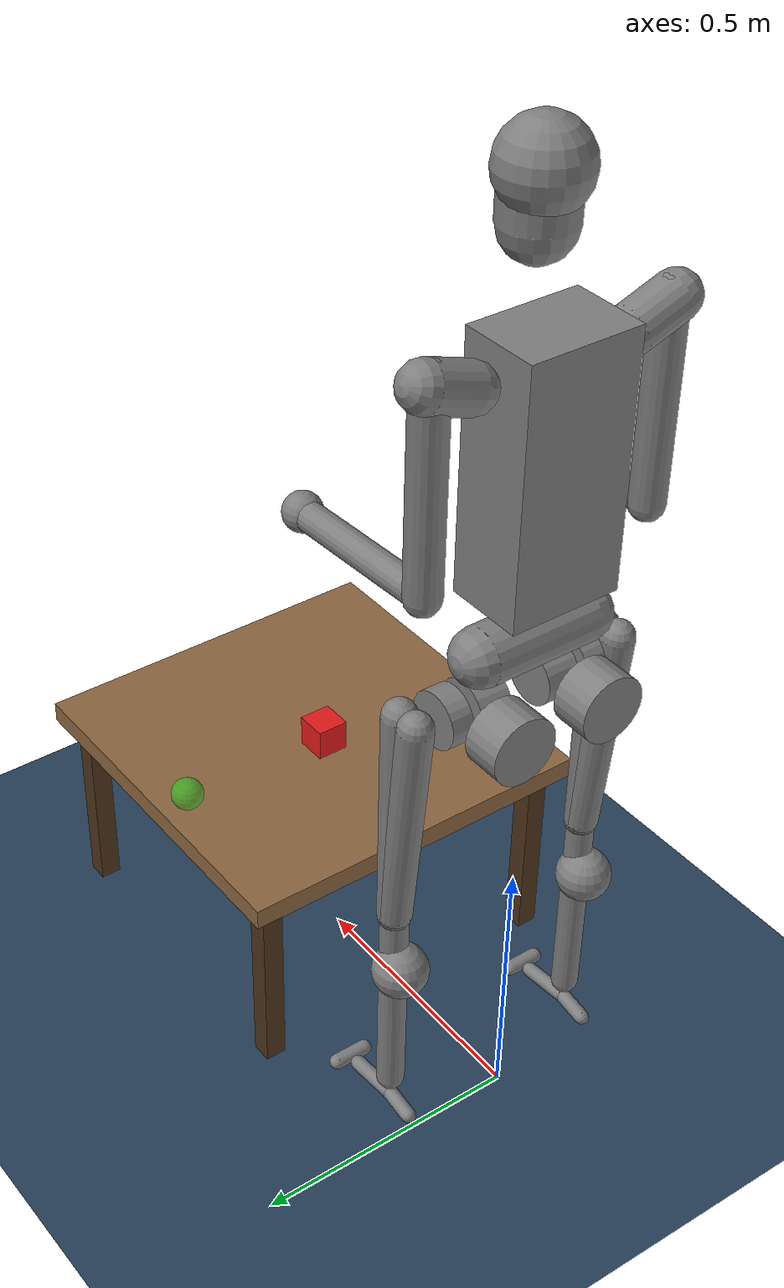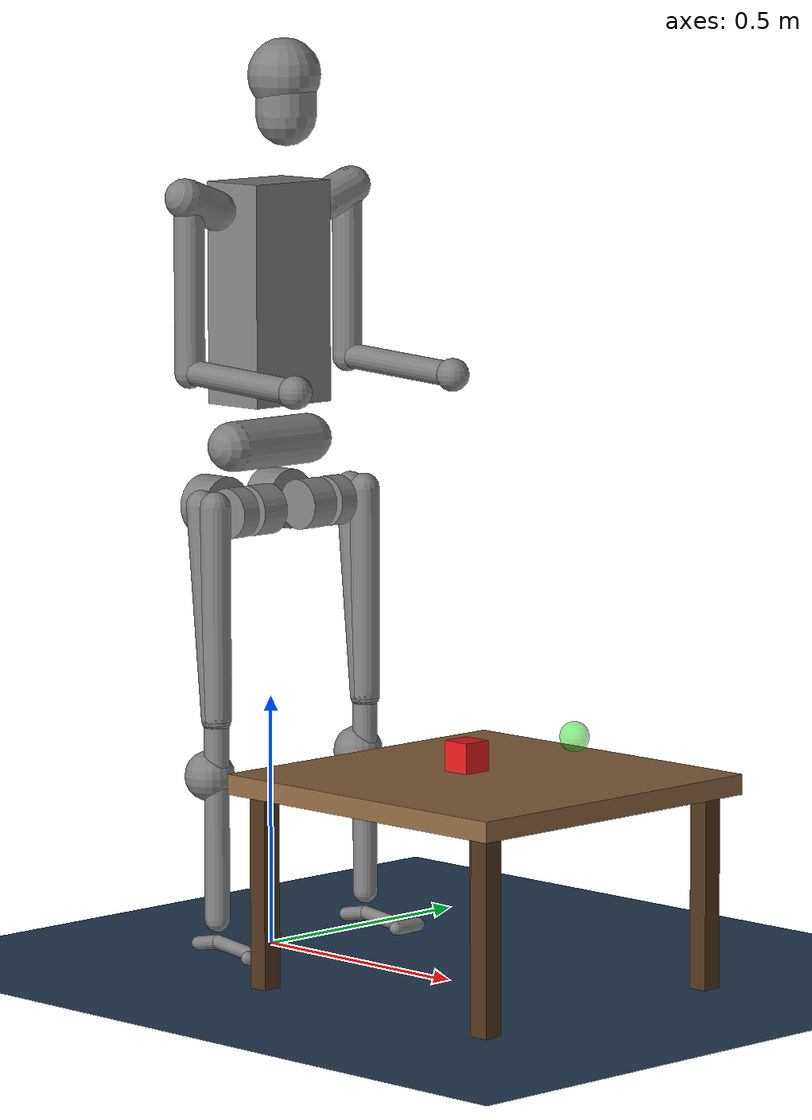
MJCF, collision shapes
<mujoco model="h1_pick_place">
  <include file="../mujoco_menagerie/unitree_h1/h1.xml"/>

  <statistic center="0 0 1" extent="2"/>

  <visual>
    <headlight diffuse="0.6 0.6 0.6" ambient="0.3 0.3 0.3" specular="0 0 0"/>
    <global azimuth="120" elevation="-20"/>
  </visual>

  <asset>
    <texture type="skybox" builtin="gradient" rgb1="0.3 0.5 0.7" rgb2="0 0 0" width="512" height="512"/>
    <texture name="groundplane" type="2d" builtin="checker" mark="edge" rgb1="0.2 0.3 0.4" rgb2="0.1 0.2 0.3" markrgb="0.8 0.8 0.8" width="300" height="300"/>
    <material name="groundplane" texture="groundplane" texuniform="true" texrepeat="5 5" reflectance="0.1"/>
  </asset>

  <worldbody>
    <light pos="0 0 3" dir="0 0 -1" directional="true"/>
    <geom name="floor" type="plane" size="5 5 0.1" material="groundplane"/>

    <!-- Table in front of the robot -->
    <body name="table" pos="0.6 0 0.4">
      <geom type="box" size="0.35 0.35 0.02" rgba="0.55 0.4 0.25 1"/>
      <geom type="box" pos="0.3 0.3 -0.2" size="0.02 0.02 0.2" rgba="0.3 0.2 0.1 1"/>
      <geom type="box" pos="-0.3 0.3 -0.2" size="0.02 0.02 0.2" rgba="0.3 0.2 0.1 1"/>
      <geom type="box" pos="0.3 -0.3 -0.2" size="0.02 0.02 0.2" rgba="0.3 0.2 0.1 1"/>
      <geom type="box" pos="-0.3 -0.3 -0.2" size="0.02 0.02 0.2" rgba="0.3 0.2 0.1 1"/>
    </body>

    <!-- Graspable object: free-floating box, position randomized each episode from Python -->
    <body name="object" pos="0.55 0.0 0.45">
      <freejoint name="object_joint"/>
      <geom name="object_geom" type="box" size="0.03 0.03 0.03" mass="0.1" rgba="0.9 0.1 0.1 1" friction="1.0 0.01 0.001"/>
    </body>

    <!-- Target marker: visual-only site, moved each episode from Python -->
    <site name="target_site" pos="0.55 0.3 0.45" size="0.03" rgba="0.1 0.9 0.1 0.5"/>
  </worldbody>

  <equality>
    <!-- Grasp constraint: inactive by default, activated in Python when EE is close to object -->
    <weld name="grasp_weld" body1="right_elbow_link" body2="object" active="false" solref="0.02 1"/>
  </equality>
</mujoco>

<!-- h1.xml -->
<mujoco model="h1">
  <compiler angle="radian" meshdir="assets" autolimits="true"/>

  <statistic meansize="0.05"/>

  <default>
    <default class="h1">
      <joint damping="1" armature="0.1"/>
      <default class="visual">
        <geom type="mesh" contype="0" conaffinity="0" group="2" material="black"/>
      </default>
      <default class="collision">
        <geom group="3" mass="0" density="0"/>
        <default class="foot">
          <geom type="capsule" size=".014"/>
          <default class="foot1">
            <geom fromto="-.035 0 -0.056 .02 0 -0.045"/>
          </default>
          <default class="foot2">
            <geom fromto=".02 0 -0.045 .115 0 -0.056"/>
          </default>
          <default class="foot3">
            <geom fromto=".14 -.03 -0.056 .14 .03 -0.056"/>
          </default>
        </default>
      </default>
      <site size="0.001" rgba="0.5 0.5 0.5 0.3" group="4"/>
    </default>
  </default>

  <asset>
    <material name="black" rgba="0.1 0.1 0.1 1"/>
    <material name="white" rgba="1 1 1 1"/>

    <mesh file="pelvis.stl"/>
    <mesh file="left_hip_yaw_link.stl"/>
    <mesh file="left_hip_roll_link.stl"/>
    <mesh file="left_hip_pitch_link.stl"/>
    <mesh file="left_knee_link.stl"/>
    <mesh file="left_ankle_link.stl"/>
    <mesh file="right_hip_yaw_link.stl"/>
    <mesh file="right_hip_roll_link.stl"/>
    <mesh file="right_hip_pitch_link.stl"/>
    <mesh file="right_knee_link.stl"/>
    <mesh file="right_ankle_link.stl"/>
    <mesh file="torso_link.stl"/>
    <mesh file="left_shoulder_pitch_link.stl"/>
    <mesh file="left_shoulder_roll_link.stl"/>
    <mesh file="left_shoulder_yaw_link.stl"/>
    <mesh file="left_elbow_link.stl"/>
    <mesh file="right_shoulder_pitch_link.stl"/>
    <mesh file="right_shoulder_roll_link.stl"/>
    <mesh file="right_shoulder_yaw_link.stl"/>
    <mesh file="right_elbow_link.stl"/>
    <mesh file="logo_link.stl"/>
  </asset>

  <worldbody>
    <light mode="targetbodycom" target="torso_link" pos="2 0 2.5"/>
    <body name="pelvis" pos="0 0 1.06" childclass="h1">
      <inertial pos="-0.0002 4e-05 -0.04522" quat="0.498303 0.499454 -0.500496 0.501741" mass="5.39"
        diaginertia="0.0490211 0.0445821 0.00824619"/>
      <freejoint/>
      <geom class="visual" mesh="pelvis"/>
      <body name="left_hip_yaw_link" pos="0 0.0875 -0.1742">
        <inertial pos="-0.04923 0.0001 0.0072" quat="0.69699 0.219193 0.233287 0.641667" mass="2.244"
          diaginertia="0.00304494 0.00296885 0.00189201"/>
        <joint name="left_hip_yaw" axis="0 0 1" range="-0.43 0.43"/>
        <geom class="visual" mesh="left_hip_yaw_link"/>
        <geom size="0.06 0.035" pos="-0.067 0 0" quat="0.707123 0 0.70709 0" type="cylinder" class="collision"/>
        <body name="left_hip_roll_link" pos="0.039468 0 0">
          <inertial pos="-0.0058 -0.00319 -9e-05" quat="0.0438242 0.70721 -0.0729075 0.701867" mass="2.232"
            diaginertia="0.00243264 0.00225325 0.00205492"/>
          <joint name="left_hip_roll" axis="1 0 0" range="-0.43 0.43"/>
          <geom class="visual" mesh="left_hip_roll_link"/>
          <geom class="collision" type="cylinder" size="0.05 0.03" quat="1 1 0 0" pos="0 -0.02 0"/>
          <body name="left_hip_pitch_link" pos="0 0.11536 0">
            <inertial pos="0.00746 -0.02346 -0.08193" quat="0.979828 0.0513522 -0.0169854 -0.192382" mass="4.152"
              diaginertia="0.0829503 0.0821457 0.00510909"/>
            <joint name="left_hip_pitch" axis="0 1 0" range="-1.57 1.57"/>
            <geom class="visual" mesh="left_hip_pitch_link"/>
            <geom class="collision" type="capsule" size="0.03" fromto="0.02 0 -0.4 -0.02 0 0.02"/>
            <geom class="collision" type="capsule" size="0.03" fromto="0.02 0 -0.4 0.02 0 0.02"/>
            <geom class="collision" type="cylinder" size="0.05 0.02" quat="1 1 0 0" pos="0 -0.07 0"/>
            <body name="left_knee_link" pos="0 0 -0.4">
              <inertial pos="-0.00136 -0.00512 -0.1384" quat="0.626132 -0.034227 -0.0416277 0.777852" mass="1.721"
                diaginertia="0.0125237 0.0123104 0.0019428"/>
              <joint name="left_knee" axis="0 1 0" range="-0.26 2.05"/>
              <geom class="visual" mesh="left_knee_link"/>
              <geom class="collision" type="capsule" size="0.025" fromto="0.02 0 -0.4 0.02 0 0"/>
              <geom class="collision" type="sphere" size="0.05" pos="0 0 -0.115"/>
              <body name="left_ankle_link" pos="0 0 -0.4">
                <inertial pos="0.06722 0.00015 -0.04497" quat="0.489101 0.503197 0.565782 0.432972" mass="0.446"
                  diaginertia="0.00220848 0.00218961 0.000214202"/>
                <joint name="left_ankle" axis="0 1 0" range="-0.87 0.52"/>
                <geom class="visual" mesh="left_ankle_link"/>
                <geom class="foot1"/>
                <geom class="foot2"/>
                <geom class="foot3"/>
              </body>
            </body>
          </body>
        </body>
      </body>
      <body name="right_hip_yaw_link" pos="0 -0.0875 -0.1742">
        <inertial pos="-0.04923 -0.0001 0.0072" quat="0.641667 0.233287 0.219193 0.69699" mass="2.244"
          diaginertia="0.00304494 0.00296885 0.00189201"/>
        <joint name="right_hip_yaw" axis="0 0 1" range="-0.43 0.43"/>
        <geom class="visual" mesh="right_hip_yaw_link"/>
        <geom size="0.06 0.035" pos="-0.067 0 0" quat="0.707123 0 0.70709 0" type="cylinder" class="collision"/>
        <body name="right_hip_roll_link" pos="0.039468 0 0">
          <inertial pos="-0.0058 0.00319 -9e-05" quat="-0.0438242 0.70721 0.0729075 0.701867" mass="2.232"
            diaginertia="0.00243264 0.00225325 0.00205492"/>
          <joint name="right_hip_roll" axis="1 0 0" range="-0.43 0.43"/>
          <geom class="visual" mesh="right_hip_roll_link"/>
          <geom class="collision" type="cylinder" size="0.05 0.03" quat="1 1 0 0" pos="0 0.02 0"/>
          <body name="right_hip_pitch_link" pos="0 -0.11536 0">
            <inertial pos="0.00746 0.02346 -0.08193" quat="0.979828 -0.0513522 -0.0169854 0.192382" mass="4.152"
              diaginertia="0.0829503 0.0821457 0.00510909"/>
            <joint name="right_hip_pitch" axis="0 1 0" range="-1.57 1.57"/>
            <geom class="visual" mesh="right_hip_pitch_link"/>
            <geom class="collision" type="capsule" size="0.03" fromto="0.02 0 -0.4 -0.02 0 0.02"/>
            <geom class="collision" type="capsule" size="0.03" fromto="0.02 0 -0.4 0.02 0 0.02"/>
            <geom class="collision" type="cylinder" size="0.05 0.02" quat="1 1 0 0" pos="0 0.07 0"/>
            <body name="right_knee_link" pos="0 0 -0.4">
              <inertial pos="-0.00136 0.00512 -0.1384" quat="0.777852 -0.0416277 -0.034227 0.626132" mass="1.721"
                diaginertia="0.0125237 0.0123104 0.0019428"/>
              <joint name="right_knee" axis="0 1 0" range="-0.26 2.05"/>
              <geom class="visual" mesh="right_knee_link"/>
              <geom class="collision" type="capsule" size="0.025" fromto="0.02 0 -0.4 0.02 0 0"/>
              <geom class="collision" type="sphere" size="0.05" pos="0 0 -0.115"/>
              <body name="right_ankle_link" pos="0 0 -0.4">
                <inertial pos="0.06722 -0.00015 -0.04497" quat="0.432972 0.565782 0.503197 0.489101" mass="0.446"
                  diaginertia="0.00220848 0.00218961 0.000214202"/>
                <joint name="right_ankle" axis="0 1 0" range="-0.87 0.52"/>
                <geom class="visual" mesh="right_ankle_link"/>
                <geom class="foot1"/>
                <geom class="foot2"/>
                <geom class="foot3"/>
              </body>
            </body>
          </body>
        </body>
      </body>
      <body name="torso_link">
        <inertial pos="0.000489 0.002797 0.20484" quat="0.999989 -0.00130808 -0.00282289 -0.00349105" mass="17.789"
          diaginertia="0.487315 0.409628 0.127837"/>
        <joint name="torso" axis="0 0 1" range="-2.35 2.35"/>
        <geom class="visual" mesh="torso_link"/>
        <geom class="visual" material="white" mesh="logo_link"/>
        <geom name="head" class="collision" type="capsule" size="0.06" fromto="0.05 0 0.68 0.05 0 0.6"/>
        <geom name="helmet" class="collision" type="sphere" size="0.073" pos="0.045 0 0.68"/>
        <geom name="torso" class="collision" type="box" size="0.07 0.1 0.22" pos="0 0 0.25"/>
        <geom name="hip" class="collision" type="capsule" size="0.05" fromto="0 -0.1 -0.05 0 0.1 -0.05"/>
        <site name="imu" pos="-0.04452 -0.01891 0.27756"/>
        <body name="left_shoulder_pitch_link" pos="0.0055 0.15535 0.42999" quat="0.976296 0.216438 0 0">
          <inertial pos="0.005045 0.053657 -0.015715" quat="0.814858 0.579236 -0.0201072 -0.00936488" mass="1.033"
            diaginertia="0.00129936 0.000987113 0.000858198"/>
          <joint name="left_shoulder_pitch" axis="0 1 0" range="-2.87 2.87"/>
          <geom class="visual" mesh="left_shoulder_pitch_link"/>
          <body name="left_shoulder_roll_link" pos="-0.0055 0.0565 -0.0165" quat="0.976296 -0.216438 0 0">
            <inertial pos="0.000679 0.00115 -0.094076" quat="0.732491 0.00917179 0.0766656 0.676384" mass="0.793"
              diaginertia="0.00170388 0.00158256 0.00100336"/>
            <joint name="left_shoulder_roll" axis="1 0 0" range="-0.34 3.11"/>
            <geom class="visual" mesh="left_shoulder_roll_link"/>
            <geom name="left_shoulder" class="collision" type="capsule" size="0.04"
              fromto="0 0.01 0.008 0 -0.07 -0.02"/>
            <body name="left_shoulder_yaw_link" pos="0 0 -0.1343">
              <inertial pos="0.01365 0.002767 -0.16266" quat="0.703042 -0.0331229 -0.0473362 0.708798" mass="0.839"
                diaginertia="0.00408038 0.00370367 0.000622687"/>
              <joint name="left_shoulder_yaw" axis="0 0 1" range="-1.3 4.45"/>
              <geom class="visual" mesh="left_shoulder_yaw_link"/>
              <geom class="collision" type="capsule" size="0.03" fromto="0 0 0.15 0 0 -0.2"/>
              <body name="left_elbow_link" pos="0.0185 0 -0.198">
                <inertial pos="0.15908 -0.000144 -0.015776" quat="0.0765232 0.720327 0.0853116 0.684102" mass="0.669"
                  diaginertia="0.00601829 0.00600579 0.000408305"/>
                <joint name="left_elbow" axis="0 1 0" range="-1.25 2.61"/>
                <geom class="visual" mesh="left_elbow_link"/>
                <geom class="collision" type="capsule" size="0.025" fromto="0 0 0 0.28 0 -0.015"/>
                <geom class="collision" type="sphere" size="0.033" pos="0.28 0 -0.015"/>
              </body>
            </body>
          </body>
        </body>
        <body name="right_shoulder_pitch_link" pos="0.0055 -0.15535 0.42999" quat="0.976296 -0.216438 0 0">
          <inertial pos="0.005045 -0.053657 -0.015715" quat="0.579236 0.814858 0.00936488 0.0201072" mass="1.033"
            diaginertia="0.00129936 0.000987113 0.000858198"/>
          <joint name="right_shoulder_pitch" axis="0 1 0" range="-2.87 2.87"/>
          <geom class="visual" mesh="right_shoulder_pitch_link"/>
          <body name="right_shoulder_roll_link" pos="-0.0055 -0.0565 -0.0165" quat="0.976296 0.216438 0 0">
            <inertial pos="0.000679 -0.00115 -0.094076" quat="0.676384 0.0766656 0.00917179 0.732491" mass="0.793"
              diaginertia="0.00170388 0.00158256 0.00100336"/>
            <joint name="right_shoulder_roll" axis="1 0 0" range="-3.11 0.34"/>
            <geom class="visual" mesh="right_shoulder_roll_link"/>
            <geom name="right_shoulder" class="collision" type="capsule" size="0.04"
              fromto="0 -0.01 0.008 0 0.07 -0.02"/>
            <body name="right_shoulder_yaw_link" pos="0 0 -0.1343">
              <inertial pos="0.01365 -0.002767 -0.16266" quat="0.708798 -0.0473362 -0.0331229 0.703042" mass="0.839"
                diaginertia="0.00408038 0.00370367 0.000622687"/>
              <joint name="right_shoulder_yaw" axis="0 0 1" range="-4.45 1.3"/>
              <geom class="visual" mesh="right_shoulder_yaw_link"/>
              <geom class="collision" type="capsule" size="0.03" fromto="0 0 0.15 0 0 -0.2"/>
              <body name="right_elbow_link" pos="0.0185 0 -0.198">
                <inertial pos="0.15908 0.000144 -0.015776" quat="-0.0765232 0.720327 -0.0853116 0.684102" mass="0.669"
                  diaginertia="0.00601829 0.00600579 0.000408305"/>
                <joint name="right_elbow" axis="0 1 0" range="-1.25 2.61"/>
                <geom class="visual" mesh="right_elbow_link"/>
                <geom class="collision" type="capsule" size="0.025" fromto="0 0 0 0.28 0 -0.015"/>
                <geom class="collision" type="sphere" size="0.033" pos="0.28 0 -0.015"/>
              </body>
            </body>
          </body>
        </body>
      </body>
    </body>
  </worldbody>

  <contact>
    <exclude body1="torso_link" body2="left_shoulder_roll_link"/>
    <exclude body1="torso_link" body2="right_shoulder_roll_link"/>
  </contact>

  <actuator>
    <motor class="h1" name="left_hip_yaw" joint="left_hip_yaw" ctrlrange="-200 200"/>
    <motor class="h1" name="left_hip_roll" joint="left_hip_roll" ctrlrange="-200 200"/>
    <motor class="h1" name="left_hip_pitch" joint="left_hip_pitch" ctrlrange="-200 200"/>
    <motor class="h1" name="left_knee" joint="left_knee" ctrlrange="-300 300"/>
    <motor class="h1" name="left_ankle" joint="left_ankle" ctrlrange="-40 40"/>
    <motor class="h1" name="right_hip_yaw" joint="right_hip_yaw" ctrlrange="-200 200"/>
    <motor class="h1" name="right_hip_roll" joint="right_hip_roll" ctrlrange="-200 200"/>
    <motor class="h1" name="right_hip_pitch" joint="right_hip_pitch" ctrlrange="-200 200"/>
    <motor class="h1" name="right_knee" joint="right_knee" ctrlrange="-300 300"/>
    <motor class="h1" name="right_ankle" joint="right_ankle" ctrlrange="-40 40"/>
    <motor class="h1" name="torso" joint="torso" ctrlrange="-200 200"/>
    <motor class="h1" name="left_shoulder_pitch" joint="left_shoulder_pitch" ctrlrange="-40 40"/>
    <motor class="h1" name="left_shoulder_roll" joint="left_shoulder_roll" ctrlrange="-40 40"/>
    <motor class="h1" name="left_shoulder_yaw" joint="left_shoulder_yaw" ctrlrange="-18 18"/>
    <motor class="h1" name="left_elbow" joint="left_elbow" ctrlrange="-18 18"/>
    <motor class="h1" name="right_shoulder_pitch" joint="right_shoulder_pitch" ctrlrange="-40 40"/>
    <motor class="h1" name="right_shoulder_roll" joint="right_shoulder_roll" ctrlrange="-40 40"/>
    <motor class="h1" name="right_shoulder_yaw" joint="right_shoulder_yaw" ctrlrange="-18 18"/>
    <motor class="h1" name="right_elbow" joint="right_elbow" ctrlrange="-18 18"/>
  </actuator>

  <sensor>
    <accelerometer name="imu_accel" site="imu"/>
    <gyro name="imu_gyro" site="imu"/>
  </sensor>
</mujoco>
